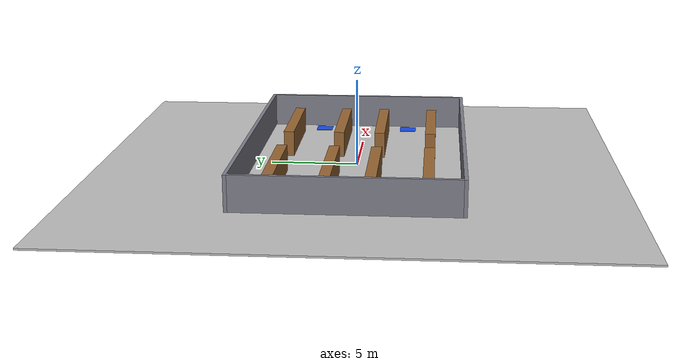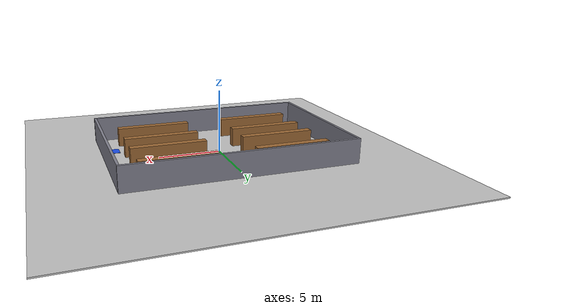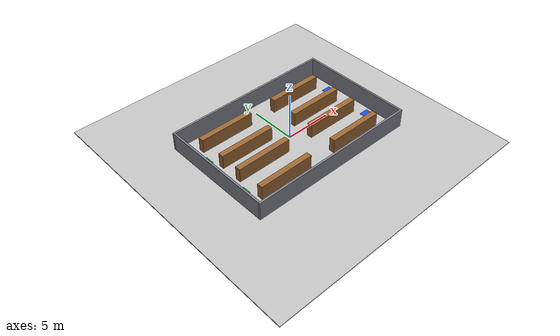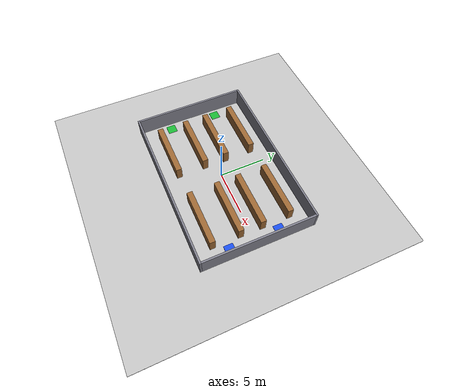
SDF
<?xml version="1.0"?>
<sdf version="1.9">
  <world name="warehouse">
    <physics name="1ms" type="ignored">
      <max_step_size>0.001</max_step_size>
      <real_time_factor>1.0</real_time_factor>
    </physics>
    <plugin filename="gz-sim-physics-system" name="gz::sim::systems::Physics"/>
    <plugin filename="gz-sim-user-commands-system" name="gz::sim::systems::UserCommands"/>
    <plugin filename="gz-sim-scene-broadcaster-system" name="gz::sim::systems::SceneBroadcaster"/>
    <plugin filename="gz-sim-sensors-system" name="gz::sim::systems::Sensors"><render_engine>ogre2</render_engine></plugin>
    <plugin filename="gz-sim-imu-system" name="gz::sim::systems::Imu"/>
    <scene>
      <ambient>0.7 0.7 0.7 1</ambient>
      <background>0.8 0.85 0.9 1</background>
      <shadows>false</shadows>
    </scene>
    <light type="directional" name="sun">
      <cast_shadows>false</cast_shadows>
      <pose>0 0 10 0 0 0</pose>
      <diffuse>0.9 0.9 0.9 1</diffuse>
      <specular>0.2 0.2 0.2 1</specular>
      <direction>-0.5 0.1 -0.9</direction>
    </light>
    <model name='floor'><static>true</static><pose>0 0 -0.05 0 0 0</pose><link name='l'><collision name='c'><geometry><box><size>30 30 0.1</size></box></geometry></collision><visual name='v'><geometry><box><size>30 30 0.1</size></box></geometry><material><ambient>0.75 0.75 0.75 1</ambient><diffuse>0.75 0.75 0.75 1</diffuse></material></visual></link></model>
    <model name='wall_n'><static>true</static><pose>0 6.1 1 0 0 0</pose><link name='l'><collision name='c'><geometry><box><size>18.4 0.2 2</size></box></geometry></collision><visual name='v'><geometry><box><size>18.4 0.2 2</size></box></geometry><material><ambient>0.5 0.5 0.55 1</ambient><diffuse>0.5 0.5 0.55 1</diffuse></material></visual></link></model>
    <model name='wall_s'><static>true</static><pose>0 -6.1 1 0 0 0</pose><link name='l'><collision name='c'><geometry><box><size>18.4 0.2 2</size></box></geometry></collision><visual name='v'><geometry><box><size>18.4 0.2 2</size></box></geometry><material><ambient>0.5 0.5 0.55 1</ambient><diffuse>0.5 0.5 0.55 1</diffuse></material></visual></link></model>
    <model name='wall_e'><static>true</static><pose>9.1 0 1 0 0 0</pose><link name='l'><collision name='c'><geometry><box><size>0.2 12 2</size></box></geometry></collision><visual name='v'><geometry><box><size>0.2 12 2</size></box></geometry><material><ambient>0.5 0.5 0.55 1</ambient><diffuse>0.5 0.5 0.55 1</diffuse></material></visual></link></model>
    <model name='wall_w'><static>true</static><pose>-9.1 0 1 0 0 0</pose><link name='l'><collision name='c'><geometry><box><size>0.2 12 2</size></box></geometry></collision><visual name='v'><geometry><box><size>0.2 12 2</size></box></geometry><material><ambient>0.5 0.5 0.55 1</ambient><diffuse>0.5 0.5 0.55 1</diffuse></material></visual></link></model>
    <model name='shelf_a1'><static>true</static><pose>-4.5 4.2 0.75 0 0 0</pose><link name='l'><collision name='c'><geometry><box><size>6 0.6 1.5</size></box></geometry></collision><visual name='v'><geometry><box><size>6 0.6 1.5</size></box></geometry><material><ambient>0.6 0.4 0.2 1</ambient><diffuse>0.6 0.4 0.2 1</diffuse></material></visual></link></model>
    <model name='shelf_a2'><static>true</static><pose>4.5 4.2 0.75 0 0 0</pose><link name='l'><collision name='c'><geometry><box><size>6 0.6 1.5</size></box></geometry></collision><visual name='v'><geometry><box><size>6 0.6 1.5</size></box></geometry><material><ambient>0.6 0.4 0.2 1</ambient><diffuse>0.6 0.4 0.2 1</diffuse></material></visual></link></model>
    <model name='shelf_b1'><static>true</static><pose>-4.5 1.2 0.75 0 0 0</pose><link name='l'><collision name='c'><geometry><box><size>6 0.6 1.5</size></box></geometry></collision><visual name='v'><geometry><box><size>6 0.6 1.5</size></box></geometry><material><ambient>0.6 0.4 0.2 1</ambient><diffuse>0.6 0.4 0.2 1</diffuse></material></visual></link></model>
    <model name='shelf_b2'><static>true</static><pose>4.5 1.2 0.75 0 0 0</pose><link name='l'><collision name='c'><geometry><box><size>6 0.6 1.5</size></box></geometry></collision><visual name='v'><geometry><box><size>6 0.6 1.5</size></box></geometry><material><ambient>0.6 0.4 0.2 1</ambient><diffuse>0.6 0.4 0.2 1</diffuse></material></visual></link></model>
    <model name='shelf_c1'><static>true</static><pose>-4.5 -1.2 0.75 0 0 0</pose><link name='l'><collision name='c'><geometry><box><size>6 0.6 1.5</size></box></geometry></collision><visual name='v'><geometry><box><size>6 0.6 1.5</size></box></geometry><material><ambient>0.6 0.4 0.2 1</ambient><diffuse>0.6 0.4 0.2 1</diffuse></material></visual></link></model>
    <model name='shelf_c2'><static>true</static><pose>4.5 -1.2 0.75 0 0 0</pose><link name='l'><collision name='c'><geometry><box><size>6 0.6 1.5</size></box></geometry></collision><visual name='v'><geometry><box><size>6 0.6 1.5</size></box></geometry><material><ambient>0.6 0.4 0.2 1</ambient><diffuse>0.6 0.4 0.2 1</diffuse></material></visual></link></model>
    <model name='shelf_d1'><static>true</static><pose>-4.5 -4.2 0.75 0 0 0</pose><link name='l'><collision name='c'><geometry><box><size>6 0.6 1.5</size></box></geometry></collision><visual name='v'><geometry><box><size>6 0.6 1.5</size></box></geometry><material><ambient>0.6 0.4 0.2 1</ambient><diffuse>0.6 0.4 0.2 1</diffuse></material></visual></link></model>
    <model name='shelf_d2'><static>true</static><pose>4.5 -4.2 0.75 0 0 0</pose><link name='l'><collision name='c'><geometry><box><size>6 0.6 1.5</size></box></geometry></collision><visual name='v'><geometry><box><size>6 0.6 1.5</size></box></geometry><material><ambient>0.6 0.4 0.2 1</ambient><diffuse>0.6 0.4 0.2 1</diffuse></material></visual></link></model>
    <model name='pickup_1'><static>true</static><pose>-8.2 2.7 0.01 0 0 0</pose><link name='l'><visual name='v'><geometry><box><size>1 1 0.02</size></box></geometry><material><ambient>0.1 0.7 0.2 1</ambient><diffuse>0.1 0.7 0.2 1</diffuse></material></visual></link></model>
    <model name='pickup_2'><static>true</static><pose>-8.2 -2.7 0.01 0 0 0</pose><link name='l'><visual name='v'><geometry><box><size>1 1 0.02</size></box></geometry><material><ambient>0.1 0.7 0.2 1</ambient><diffuse>0.1 0.7 0.2 1</diffuse></material></visual></link></model>
    <model name='delivery_1'><static>true</static><pose>8.2 2.7 0.01 0 0 0</pose><link name='l'><visual name='v'><geometry><box><size>1 1 0.02</size></box></geometry><material><ambient>0.1 0.3 0.9 1</ambient><diffuse>0.1 0.3 0.9 1</diffuse></material></visual></link></model>
    <model name='delivery_2'><static>true</static><pose>8.2 -2.7 0.01 0 0 0</pose><link name='l'><visual name='v'><geometry><box><size>1 1 0.02</size></box></geometry><material><ambient>0.1 0.3 0.9 1</ambient><diffuse>0.1 0.3 0.9 1</diffuse></material></visual></link></model>
  </world>
</sdf>
